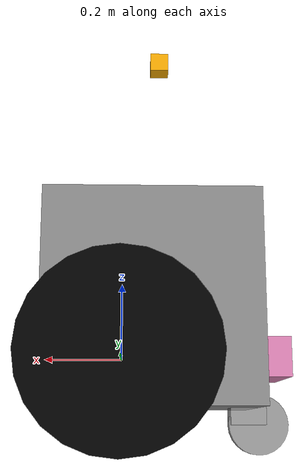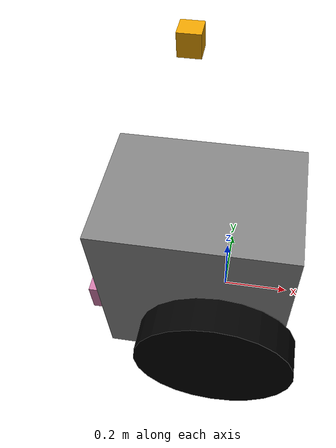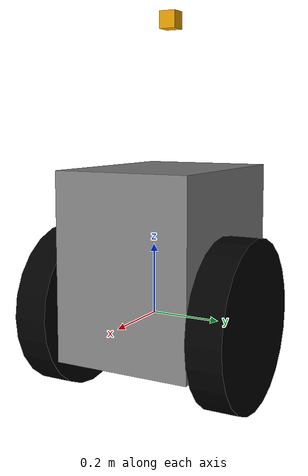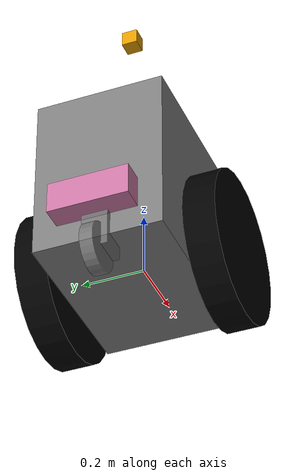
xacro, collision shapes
<?xml version="1.0" encoding="UTF-8"?>

<robot name="carter"
   xmlns:xacro="http://www.ros.org/wiki/xacro">

   <xacro:include filename="gazebo_control.xacro" />
   <xacro:include filename="lidar.xacro" />

   <link name="chassis_link">
      <visual>
         <origin rpy="0 0 0" xyz="0 0 0" />
         <geometry>
            <mesh filename="package://carter_description/meshes/chassis.obj" />
         </geometry>
         <material name="chassis_material">
            <color rgba="0.5 0.5 0.5 0.9" />
         </material>
      </visual>
      <collision>
         <origin rpy="0 0 0" xyz="-0.07764248 -0.000000 0.14683718" />
         <geometry>
            <box size=".55 .40 .54"/>
         </geometry>
      </collision>
      <inertial>
         <origin rpy="0 0 0" xyz="-0.07764248 -0.000000 0.14683718" />
         <mass value="45.88" />
         <inertia ixx="1.182744" ixy="0.017957" ixz="-0.077476" iyx="0.017957" iyy="0.538664" iyz="0.000018" izx="-0.077476" izy="0.000018" izz="1.240229"/>
      </inertial>
   </link>
   <link name="left_wheel_link">
      <visual>
         <origin rpy="1.57057 -1.57057 0" xyz="0 0 0" />
         <geometry>
            <mesh filename="package://carter_description/meshes/side_wheel.obj" />
         </geometry>
         <material name="wheel_material">
            <color rgba="0 0 0 0.9" />
         </material>
      </visual>
      <collision>
         <origin rpy="1.57057 -1.57057 0" xyz="0 -0.05 0" />
         <geometry>
            <cylinder length = "0.1" radius = "0.240"/>
         </geometry>
      </collision>
      <inertial>
         <origin rpy="0 0 0" xyz="0 -0.05 0" />
         <mass value="4.195729" />
         <inertia ixx="0.063680" ixy="0.000000" ixz="0.000000" iyx="0.000000" iyy="0.121410" iyz="0.000000" izx="0.000000" izy="0.000000" izz="0.063680"/>
      </inertial>
   </link>
   <link name="right_wheel_link">
      <visual>
         <origin rpy="-1.57057 -1.57057 0" xyz="0 0 0" />
         <geometry>
            <mesh filename="package://carter_description/meshes/side_wheel.obj" />
         </geometry>
         <material name="wheel_material">
            <color rgba="0 0 0  0.9" />
         </material>
      </visual>
      <collision>
         <origin rpy="-1.57057 -1.57057 0" xyz="0 .05 0" />
         <geometry>
            <cylinder length = "0.1" radius = "0.240"/>
         </geometry>
      </collision>
      <inertial>
         <origin rpy="0 0 0" xyz="0 .05 0" />
         <mass value="4.195729" />
         <inertia ixx="0.063680" ixy="0.000000" ixz="0.000000" iyx="0.000000" iyy="0.121410" iyz="0.000000" izx="0.000000" izy="0.000000" izz="0.063680"/>
      </inertial>
   </link>
   <link name="rear_pivot_link">
      <visual>
         <origin rpy="-1.57057 0 0" xyz="-.03809695 0 -.088" />
         <geometry>
            <mesh filename="package://carter_description/meshes/pivot.obj" />
         </geometry>
         <material name="wheel_material">
            <color rgba="0.5 0.5 0.5 0.8" />
         </material>
      </visual>
      <collision>
         <origin rpy="0 0 0" xyz="-.01 0 -.03" />
         <geometry>
            <box size=".09 .08 .12"/>
         </geometry>
      </collision>
      <inertial>
         <origin rpy="0 0 0" xyz="-.01 0 -.03" />
         <mass value="0.579519"/>
         <inertia ixx="0.001361" ixy="-0.000003" ixz="0.000347" iyx="-0.000003" iyy="0.001287" iyz="-0.000010" izx="0.000347" izy="-0.000010" izz="0.000632"/>
      </inertial>
   </link>
   <link name="rear_wheel_link">
      <visual>
         <origin rpy="1.57057 0 0" xyz="0 0 0" />
         <geometry>
            <mesh filename="package://carter_description/meshes/caster_wheel.obj" />
         </geometry>
         <material name="wheel_material">
            <color rgba="0.5 0.5 0.5 0.8" />
         </material>
      </visual>
      <collision>
         <origin rpy="1.57057 0 0" xyz="0 0 0" />
         <geometry>
            <cylinder length = "0.04" radius = "0.076"/>
         </geometry>
      </collision>
      <inertial>
         <origin rpy="1.57057 0 0" xyz="0.000000 0.000000 0.000000" />
         <mass value="1.25"/>
         <inertia ixx="0.02888" ixy="0.000000" ixz="0.000000" iyx="0.000000" iyy="0.02888" iyz="0.000000" izx="0.000000" izy="0.000000" izz="0.02888"/>
      </inertial>
   </link>
   <link name="com_offset">
      <collision>
         <origin rpy="0 0 0" xyz="0 0 0" />
         <geometry>
            <box size=".25 .25 .1"/>
         </geometry>
      </collision>
      <inertial>
         <origin rpy="0 0 0" xyz="0 0 0" />
         <mass value="20.0" />
         <inertia ixx="1.208" ixy="0" ixz="0" iyy="1.208" iyz="0" izz="2.08" />
      </inertial>
   </link>
   <link name="imu">
      <collision>
         <origin rpy="0 0 0" xyz="0 0 0" />
         <geometry>
            <box size=".1 .1 .1"/>
         </geometry>
      </collision>
      <inertial>
         <origin rpy="0 0 0" xyz="0 0 0" />
         <mass value=".1" />
         <inertia ixx="0.001667" ixy="0.0" ixz="0.0" iyy="0.001667" iyz="0.0" izz="0.001667"/>
      </inertial>
   </link>
   <joint name="com_joint" type="fixed">
      <origin rpy="0 0 0" xyz="-.3 0 0" />
      <axis xyz="0 1 0" />
      <parent link="chassis_link" />
      <child link="com_offset" />
   </joint>
   <joint name="imu_joint" type="fixed">
      <origin rpy="0 0 0" xyz="0 0 0" />
      <axis xyz="0 1 0" />
      <parent link="chassis_link" />
      <child link="imu" />
   </joint>
   <joint name="left_wheel" type="continuous">
      <origin rpy="0 0 0" xyz="0 0.31420517 0" />
      <axis xyz="0 1 0" />
      <parent link="chassis_link" />
      <child link="left_wheel_link" />
   </joint>
   <joint name="right_wheel" type="continuous">
      <origin rpy="0 0 0" xyz="0 -0.31420517 0" />
      <axis xyz="0 1 0" />
      <parent link="chassis_link" />
      <child link="right_wheel_link" />
   </joint>
   <joint name="rear_pivot" type="continuous">
      <origin rpy="0 0 0" xyz="-0.31613607 0 -.0758" />
      <axis xyz="0 0 1" />
      <parent link="chassis_link" />
      <child link="rear_pivot_link" />
   </joint>
   <joint name="rear_axle" type="continuous">
      <origin rpy="0 0 0" xyz="-.03809695 0 -.08961022" />
      <axis xyz="0 1 0" />
      <parent link="rear_pivot_link" />
      <child link="rear_wheel_link" />
   </joint>
</robot>

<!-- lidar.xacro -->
<robot name="nav_robot"
  xmlns:xacro="http://ros.org/wiki/xacro">

  <link name="lidar_link">
    <visual>
      <origin xyz="-0.0 0 0.0" rpy="0 0 0"/>
      <geometry>
        <cylinder radius="0.01" length="0.01" />
      </geometry>
    </visual>

    <collision>
      <origin xyz="-0.05 0 0.42" rpy="0 0 0"/>
      <geometry>
        <box size="0.05 0.05 0.05" />
      </geometry>
    </collision>

    <inertial>
      <origin xyz="-0.05 0 0.42" rpy="0 0 0"/>
      <mass value="1"/>
      <inertia ixx="1.0" ixy="0.0" ixz="0.0" iyy="1.0" iyz="0.0" izz="1.0"/>
    </inertial>
  </link>

  <joint name='lidar_sensor_joint' type='fixed'>
    <parent link="chassis_link"/>
    <child link="lidar_link"/>
    <origin rpy="0 0 0" xyz="-0.05 0 0.42" />

  </joint>

  <gazebo reference="lidar_link">
    <sensor name="scan" type='gpu_lidar'>
      <pose>0 0 0.2 0 0 0</pose>
      <topic>scan</topic>
      <update_rate>10</update_rate>
      <ray>
        <scan>
          <horizontal>
            <samples>640</samples>
            <resolution>1</resolution>
            <min_angle>-1.396263</min_angle>
            <max_angle>1.396263</max_angle>
          </horizontal>
          <vertical>
            <samples>16</samples>
            <resolution>1</resolution>
            <min_angle>-0.261799</min_angle>
            <max_angle>0.261799</max_angle>
          </vertical>
        </scan>
        <range>
          <min>0.1</min>
          <max>10.0</max>
          <resolution>0.01</resolution>
        </range>
      </ray>
      <always_on>1</always_on>
      <visualize>true</visualize>
      <gz_frame_id>lidar_link</gz_frame_id>
      <plugin filename="gz-sim-sensors-system" name="gz::sim::systems::Sensors">
        <render_engine>ogre2</render_engine>
      </plugin>
    </sensor>
  </gazebo>

</robot>
